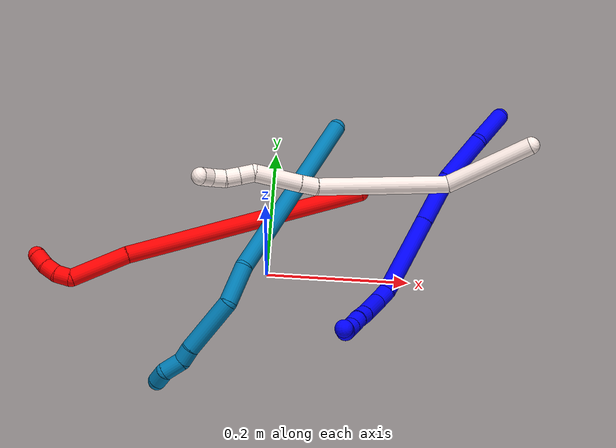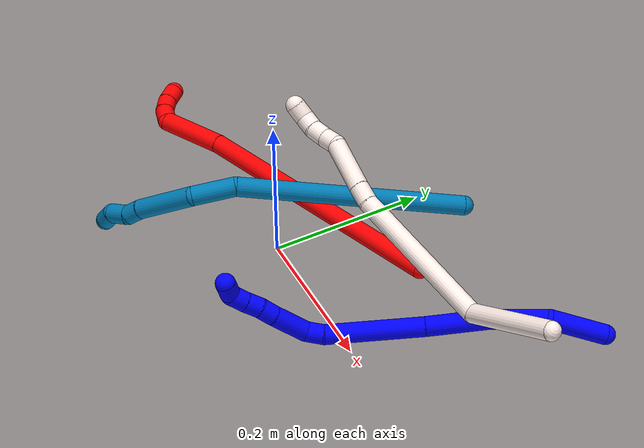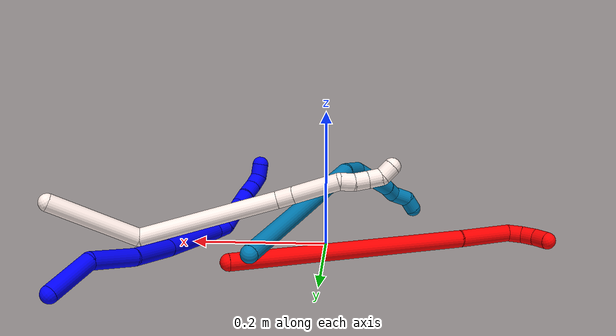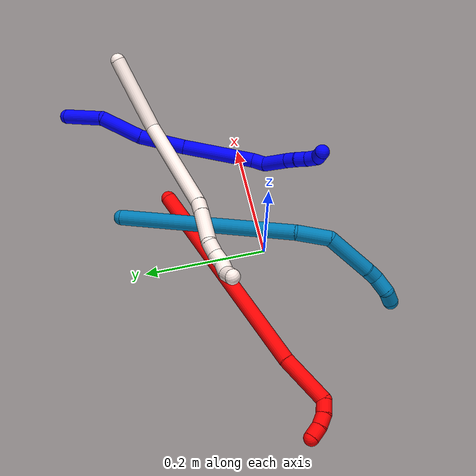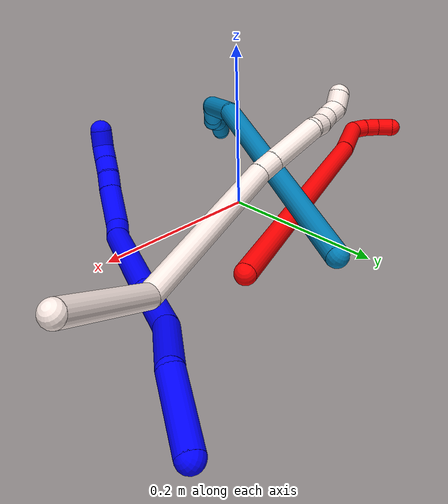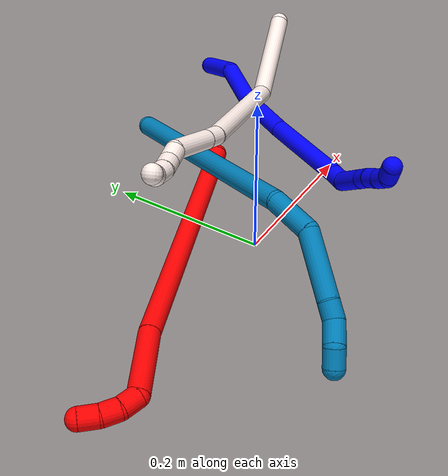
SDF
<sdf version="1.7">
 <world name="default">
  <model name="1">
   <static>0</static>
   <link name="1">
    <collision name="collision-cylinder-e_1_1_4">
     <pose>-0.008242 -0.035737 0.003738 1.46659 -0.225467 -0.203279</pose>
     <geometry><cylinder><radius>0.0125</radius><length>0.07373</length></cylinder></geometry>
     <surface>
      <friction><ode><mu>1.16</mu><mu2>1.16</mu2><slip1>0</slip1><slip2>0</slip2></ode></friction>
      <contact><ode><kp>1e+06</kp><kd>1</kd><max_vel>0</max_vel><min_depth>0.001</min_depth></ode></contact>
     </surface>
    </collision>
    <visual name="visual-cylinder-e_1_1_4">
     <pose>-0.008242 -0.035737 0.003738 1.46659 -0.225467 -0.203279</pose>
     <geometry><cylinder><radius>0.0125</radius><length>0.07373</length></cylinder></geometry>
     <material><ambient>0 0 1 1</ambient></material>
    </visual>
    <collision name="collision-cylinder-e_2_4_5">
     <pose>-0.01504 -0.106172 -0.005378 1.92556 0.038984 0.056006</pose>
     <geometry><cylinder><radius>0.0125</radius><length>0.07406</length></cylinder></geometry>
     <surface>
      <friction><ode><mu>1.16</mu><mu2>1.16</mu2><slip1>0</slip1><slip2>0</slip2></ode></friction>
      <contact><ode><kp>1e+06</kp><kd>1</kd><max_vel>0</max_vel><min_depth>0.001</min_depth></ode></contact>
     </surface>
    </collision>
    <visual name="visual-cylinder-e_2_4_5">
     <pose>-0.01504 -0.106172 -0.005378 1.92556 0.038984 0.056006</pose>
     <geometry><cylinder><radius>0.0125</radius><length>0.07406</length></cylinder></geometry>
     <material><ambient>0 0 1 1</ambient></material>
    </visual>
    <collision name="collision-cylinder-e_3_5_6">
     <pose>-0.007867 -0.178789 -0.02404 1.72278 0.148274 0.1726</pose>
     <geometry><cylinder><radius>0.0125</radius><length>0.077574</length></cylinder></geometry>
     <surface>
      <friction><ode><mu>1.16</mu><mu2>1.16</mu2><slip1>0</slip1><slip2>0</slip2></ode></friction>
      <contact><ode><kp>1e+06</kp><kd>1</kd><max_vel>0</max_vel><min_depth>0.001</min_depth></ode></contact>
     </surface>
    </collision>
    <visual name="visual-cylinder-e_3_5_6">
     <pose>-0.007867 -0.178789 -0.02404 1.72278 0.148274 0.1726</pose>
     <geometry><cylinder><radius>0.0125</radius><length>0.077574</length></cylinder></geometry>
     <material><ambient>0 0 1 1</ambient></material>
    </visual>
    <collision name="collision-cylinder-e_4_6_7">
     <pose>0.004844 -0.277413 -0.036292 1.67656 0.113862 0.126557</pose>
     <geometry><cylinder><radius>0.0125</radius><length>0.122888</length></cylinder></geometry>
     <surface>
      <friction><ode><mu>1.16</mu><mu2>1.16</mu2><slip1>0</slip1><slip2>0</slip2></ode></friction>
      <contact><ode><kp>1e+06</kp><kd>1</kd><max_vel>0</max_vel><min_depth>0.001</min_depth></ode></contact>
     </surface>
    </collision>
    <visual name="visual-cylinder-e_4_6_7">
     <pose>0.004844 -0.277413 -0.036292 1.67656 0.113862 0.126557</pose>
     <geometry><cylinder><radius>0.0125</radius><length>0.122888</length></cylinder></geometry>
     <material><ambient>0 0 1 1</ambient></material>
    </visual>
    <collision name="collision-cylinder-e_5_7_8">
     <pose>0.010243 -0.349324 -0.04442 1.72001 -0.138722 -0.161045</pose>
     <geometry><cylinder><radius>0.0125</radius><length>0.022884</length></cylinder></geometry>
     <surface>
      <friction><ode><mu>1.16</mu><mu2>1.16</mu2><slip1>0</slip1><slip2>0</slip2></ode></friction>
      <contact><ode><kp>1e+06</kp><kd>1</kd><max_vel>0</max_vel><min_depth>0.001</min_depth></ode></contact>
     </surface>
    </collision>
    <visual name="visual-cylinder-e_5_7_8">
     <pose>0.010243 -0.349324 -0.04442 1.72001 -0.138722 -0.161045</pose>
     <geometry><cylinder><radius>0.0125</radius><length>0.022884</length></cylinder></geometry>
     <material><ambient>0 0 1 1</ambient></material>
    </visual>
    <collision name="collision-cylinder-e_6_8_9">
     <pose>-0.000427 -0.381079 -0.038515 1.21696 -0.393267 -0.275799</pose>
     <geometry><cylinder><radius>0.0125</radius><length>0.047432</length></cylinder></geometry>
     <surface>
      <friction><ode><mu>1.16</mu><mu2>1.16</mu2><slip1>0</slip1><slip2>0</slip2></ode></friction>
      <contact><ode><kp>1e+06</kp><kd>1</kd><max_vel>0</max_vel><min_depth>0.001</min_depth></ode></contact>
     </surface>
    </collision>
    <visual name="visual-cylinder-e_6_8_9">
     <pose>-0.000427 -0.381079 -0.038515 1.21696 -0.393267 -0.275799</pose>
     <geometry><cylinder><radius>0.0125</radius><length>0.047432</length></cylinder></geometry>
     <material><ambient>0 0 1 1</ambient></material>
    </visual>
    <collision name="collision-cylinder-e_7_9_10">
     <pose>-0.013971 -0.410224 -0.028038 1.24678 -0.456718 -0.331167</pose>
     <geometry><cylinder><radius>0.0125</radius><length>0.020208</length></cylinder></geometry>
     <surface>
      <friction><ode><mu>1.16</mu><mu2>1.16</mu2><slip1>0</slip1><slip2>0</slip2></ode></friction>
      <contact><ode><kp>1e+06</kp><kd>1</kd><max_vel>0</max_vel><min_depth>0.001</min_depth></ode></contact>
     </surface>
    </collision>
    <visual name="visual-cylinder-e_7_9_10">
     <pose>-0.013971 -0.410224 -0.028038 1.24678 -0.456718 -0.331167</pose>
     <geometry><cylinder><radius>0.0125</radius><length>0.020208</length></cylinder></geometry>
     <material><ambient>0 0 1 1</ambient></material>
    </visual>
    <collision name="collision-cylinder-e_8_10_11">
     <pose>-0.021723 -0.428174 -0.02287 1.33164 -0.329809 -0.259956</pose>
     <geometry><cylinder><radius>0.0125</radius><length>0.020351</length></cylinder></geometry>
     <surface>
      <friction><ode><mu>1.16</mu><mu2>1.16</mu2><slip1>0</slip1><slip2>0</slip2></ode></friction>
      <contact><ode><kp>1e+06</kp><kd>1</kd><max_vel>0</max_vel><min_depth>0.001</min_depth></ode></contact>
     </surface>
    </collision>
    <visual name="visual-cylinder-e_8_10_11">
     <pose>-0.021723 -0.428174 -0.02287 1.33164 -0.329809 -0.259956</pose>
     <geometry><cylinder><radius>0.0125</radius><length>0.020351</length></cylinder></geometry>
     <material><ambient>0 0 1 1</ambient></material>
    </visual>
    <collision name="collision-cylinder-e_9_11_12">
     <pose>-0.02895 -0.446426 -0.017424 1.22907 -0.394469 -0.280194</pose>
     <geometry><cylinder><radius>0.0125</radius><length>0.020461</length></cylinder></geometry>
     <surface>
      <friction><ode><mu>1.16</mu><mu2>1.16</mu2><slip1>0</slip1><slip2>0</slip2></ode></friction>
      <contact><ode><kp>1e+06</kp><kd>1</kd><max_vel>0</max_vel><min_depth>0.001</min_depth></ode></contact>
     </surface>
    </collision>
    <visual name="visual-cylinder-e_9_11_12">
     <pose>-0.02895 -0.446426 -0.017424 1.22907 -0.394469 -0.280194</pose>
     <geometry><cylinder><radius>0.0125</radius><length>0.020461</length></cylinder></geometry>
     <material><ambient>0 0 1 1</ambient></material>
    </visual>
    <collision name="collision-cylinder-e_10_12_2">
     <pose>-0.039646 -0.459258 -0.007707 0.540751 -0.72453 -0.209316</pose>
     <geometry><cylinder><radius>0.0125</radius><length>0.020411</length></cylinder></geometry>
     <surface>
      <friction><ode><mu>1.16</mu><mu2>1.16</mu2><slip1>0</slip1><slip2>0</slip2></ode></friction>
      <contact><ode><kp>1e+06</kp><kd>1</kd><max_vel>0</max_vel><min_depth>0.001</min_depth></ode></contact>
     </surface>
    </collision>
    <visual name="visual-cylinder-e_10_12_2">
     <pose>-0.039646 -0.459258 -0.007707 0.540751 -0.72453 -0.209316</pose>
     <geometry><cylinder><radius>0.0125</radius><length>0.020411</length></cylinder></geometry>
     <material><ambient>0 0 1 1</ambient></material>
    </visual>
    <collision name="collision-sphere-2">
     <pose>-0.04641 -0.463192 -0.001156 0 -0 0</pose>
     <geometry><sphere><radius>0.0125</radius></sphere></geometry>
     <surface>
      <friction><ode><mu>1.16</mu><mu2>1.16</mu2><slip1>0</slip1><slip2>0</slip2></ode></friction>
      <contact><ode><kp>1e+06</kp><kd>1</kd><max_vel>0</max_vel><min_depth>0.001</min_depth></ode></contact>
     </surface>
    </collision>
    <visual name="visual-sphere-2">
     <pose>-0.04641 -0.463192 -0.001156 0 -0 0</pose>
     <geometry><sphere><radius>0.0125</radius></sphere></geometry>
     <material><ambient>0 0 1 1</ambient></material>
    </visual>
    <collision name="collision-sphere-12">
     <pose>-0.032882 -0.455324 -0.014259 0 -0 0</pose>
     <geometry><sphere><radius>0.0125</radius></sphere></geometry>
     <surface>
      <friction><ode><mu>1.16</mu><mu2>1.16</mu2><slip1>0</slip1><slip2>0</slip2></ode></friction>
      <contact><ode><kp>1e+06</kp><kd>1</kd><max_vel>0</max_vel><min_depth>0.001</min_depth></ode></contact>
     </surface>
    </collision>
    <visual name="visual-sphere-12">
     <pose>-0.032882 -0.455324 -0.014259 0 -0 0</pose>
     <geometry><sphere><radius>0.0125</radius></sphere></geometry>
     <material><ambient>0 0 1 1</ambient></material>
    </visual>
    <collision name="collision-sphere-11">
     <pose>-0.025018 -0.437527 -0.020589 0 -0 0</pose>
     <geometry><sphere><radius>0.0125</radius></sphere></geometry>
     <surface>
      <friction><ode><mu>1.16</mu><mu2>1.16</mu2><slip1>0</slip1><slip2>0</slip2></ode></friction>
      <contact><ode><kp>1e+06</kp><kd>1</kd><max_vel>0</max_vel><min_depth>0.001</min_depth></ode></contact>
     </surface>
    </collision>
    <visual name="visual-sphere-11">
     <pose>-0.025018 -0.437527 -0.020589 0 -0 0</pose>
     <geometry><sphere><radius>0.0125</radius></sphere></geometry>
     <material><ambient>0 0 1 1</ambient></material>
    </visual>
    <collision name="collision-sphere-10">
     <pose>-0.018427 -0.41882 -0.02515 0 -0 0</pose>
     <geometry><sphere><radius>0.0125</radius></sphere></geometry>
     <surface>
      <friction><ode><mu>1.16</mu><mu2>1.16</mu2><slip1>0</slip1><slip2>0</slip2></ode></friction>
      <contact><ode><kp>1e+06</kp><kd>1</kd><max_vel>0</max_vel><min_depth>0.001</min_depth></ode></contact>
     </surface>
    </collision>
    <visual name="visual-sphere-10">
     <pose>-0.018427 -0.41882 -0.02515 0 -0 0</pose>
     <geometry><sphere><radius>0.0125</radius></sphere></geometry>
     <material><ambient>0 0 1 1</ambient></material>
    </visual>
    <collision name="collision-sphere-9">
     <pose>-0.009515 -0.401628 -0.030925 0 -0 0</pose>
     <geometry><sphere><radius>0.0125</radius></sphere></geometry>
     <surface>
      <friction><ode><mu>1.16</mu><mu2>1.16</mu2><slip1>0</slip1><slip2>0</slip2></ode></friction>
      <contact><ode><kp>1e+06</kp><kd>1</kd><max_vel>0</max_vel><min_depth>0.001</min_depth></ode></contact>
     </surface>
    </collision>
    <visual name="visual-sphere-9">
     <pose>-0.009515 -0.401628 -0.030925 0 -0 0</pose>
     <geometry><sphere><radius>0.0125</radius></sphere></geometry>
     <material><ambient>0 0 1 1</ambient></material>
    </visual>
    <collision name="collision-sphere-4">
     <pose>-0.016483 -0.071474 0.007475 0 -0 0</pose>
     <geometry><sphere><radius>0.0125</radius></sphere></geometry>
     <surface>
      <friction><ode><mu>1.16</mu><mu2>1.16</mu2><slip1>0</slip1><slip2>0</slip2></ode></friction>
      <contact><ode><kp>1e+06</kp><kd>1</kd><max_vel>0</max_vel><min_depth>0.001</min_depth></ode></contact>
     </surface>
    </collision>
    <visual name="visual-sphere-4">
     <pose>-0.016483 -0.071474 0.007475 0 -0 0</pose>
     <geometry><sphere><radius>0.0125</radius></sphere></geometry>
     <material><ambient>0 0 1 1</ambient></material>
    </visual>
    <collision name="collision-sphere-1">
     <geometry><sphere><radius>0.0125</radius></sphere></geometry>
     <surface>
      <friction><ode><mu>1.16</mu><mu2>1.16</mu2><slip1>0</slip1><slip2>0</slip2></ode></friction>
      <contact><ode><kp>1e+06</kp><kd>1</kd><max_vel>0</max_vel><min_depth>0.001</min_depth></ode></contact>
     </surface>
    </collision>
    <visual name="visual-sphere-1">
     <geometry><sphere><radius>0.0125</radius></sphere></geometry>
     <material><ambient>0 0 1 1</ambient></material>
    </visual>
    <collision name="collision-sphere-8">
     <pose>0.008661 -0.36053 -0.046105 0 -0 0</pose>
     <geometry><sphere><radius>0.0125</radius></sphere></geometry>
     <surface>
      <friction><ode><mu>1.16</mu><mu2>1.16</mu2><slip1>0</slip1><slip2>0</slip2></ode></friction>
      <contact><ode><kp>1e+06</kp><kd>1</kd><max_vel>0</max_vel><min_depth>0.001</min_depth></ode></contact>
     </surface>
    </collision>
    <visual name="visual-sphere-8">
     <pose>0.008661 -0.36053 -0.046105 0 -0 0</pose>
     <geometry><sphere><radius>0.0125</radius></sphere></geometry>
     <material><ambient>0 0 1 1</ambient></material>
    </visual>
    <collision name="collision-sphere-5">
     <pose>-0.013597 -0.14087 -0.018232 0 -0 0</pose>
     <geometry><sphere><radius>0.0125</radius></sphere></geometry>
     <surface>
      <friction><ode><mu>1.16</mu><mu2>1.16</mu2><slip1>0</slip1><slip2>0</slip2></ode></friction>
      <contact><ode><kp>1e+06</kp><kd>1</kd><max_vel>0</max_vel><min_depth>0.001</min_depth></ode></contact>
     </surface>
    </collision>
    <visual name="visual-sphere-5">
     <pose>-0.013597 -0.14087 -0.018232 0 -0 0</pose>
     <geometry><sphere><radius>0.0125</radius></sphere></geometry>
     <material><ambient>0 0 1 1</ambient></material>
    </visual>
    <collision name="collision-sphere-6">
     <pose>-0.002137 -0.216708 -0.029847 0 -0 0</pose>
     <geometry><sphere><radius>0.0125</radius></sphere></geometry>
     <surface>
      <friction><ode><mu>1.16</mu><mu2>1.16</mu2><slip1>0</slip1><slip2>0</slip2></ode></friction>
      <contact><ode><kp>1e+06</kp><kd>1</kd><max_vel>0</max_vel><min_depth>0.001</min_depth></ode></contact>
     </surface>
    </collision>
    <visual name="visual-sphere-6">
     <pose>-0.002137 -0.216708 -0.029847 0 -0 0</pose>
     <geometry><sphere><radius>0.0125</radius></sphere></geometry>
     <material><ambient>0 0 1 1</ambient></material>
    </visual>
    <collision name="collision-sphere-7">
     <pose>0.011825 -0.338118 -0.042736 0 -0 0</pose>
     <geometry><sphere><radius>0.0125</radius></sphere></geometry>
     <surface>
      <friction><ode><mu>1.16</mu><mu2>1.16</mu2><slip1>0</slip1><slip2>0</slip2></ode></friction>
      <contact><ode><kp>1e+06</kp><kd>1</kd><max_vel>0</max_vel><min_depth>0.001</min_depth></ode></contact>
     </surface>
    </collision>
    <visual name="visual-sphere-7">
     <pose>0.011825 -0.338118 -0.042736 0 -0 0</pose>
     <geometry><sphere><radius>0.0125</radius></sphere></geometry>
     <material><ambient>0 0 1 1</ambient></material>
    </visual>
    <inertial>
     <pose>-0.007297 -0.240079 -0.021673 0 -0 0</pose>
     <mass>0.5</mass>
     <inertia><ixx>0.0003</ixx><ixy>0</ixy><ixz>0</ixz><iyy>-3.8e-05</iyy><iyz>0</iyz><izz>0.000273</izz></inertia>
    </inertial>
   </link>
   <pose>0.329177 0.281481 0.011495 -0.159529 0.772453 -0.532673</pose>
  </model>
  <model name="2">
   <static>0</static>
   <link name="2">
    <collision name="collision-cylinder-e_1_1_4">
     <pose>-0.142229 -0.062531 0.079883 0.664155 -0.951224 -0.351559</pose>
     <geometry><cylinder><radius>0.0125</radius><length>0.349402</length></cylinder></geometry>
     <surface>
      <friction><ode><mu>1.16</mu><mu2>1.16</mu2><slip1>0</slip1><slip2>0</slip2></ode></friction>
      <contact><ode><kp>1e+06</kp><kd>1</kd><max_vel>0</max_vel><min_depth>0.001</min_depth></ode></contact>
     </surface>
    </collision>
    <visual name="visual-cylinder-e_1_1_4">
     <pose>-0.142229 -0.062531 0.079883 0.664155 -0.951224 -0.351559</pose>
     <geometry><cylinder><radius>0.0125</radius><length>0.349402</length></cylinder></geometry>
     <material><ambient>1 0 0 1</ambient></material>
    </visual>
    <collision name="collision-cylinder-e_2_4_5">
     <pose>-0.320428 -0.134762 0.180666 0.434504 -1.00108 -0.240324</pose>
     <geometry><cylinder><radius>0.0125</radius><length>0.085435</length></cylinder></geometry>
     <surface>
      <friction><ode><mu>1.16</mu><mu2>1.16</mu2><slip1>0</slip1><slip2>0</slip2></ode></friction>
      <contact><ode><kp>1e+06</kp><kd>1</kd><max_vel>0</max_vel><min_depth>0.001</min_depth></ode></contact>
     </surface>
    </collision>
    <visual name="visual-cylinder-e_2_4_5">
     <pose>-0.320428 -0.134762 0.180666 0.434504 -1.00108 -0.240324</pose>
     <geometry><cylinder><radius>0.0125</radius><length>0.085435</length></cylinder></geometry>
     <material><ambient>1 0 0 1</ambient></material>
    </visual>
    <collision name="collision-cylinder-e_3_5_6">
     <pose>-0.361184 -0.153734 0.205422 1.17678 -0.444729 -0.299467</pose>
     <geometry><cylinder><radius>0.0125</radius><length>0.02225</length></cylinder></geometry>
     <surface>
      <friction><ode><mu>1.16</mu><mu2>1.16</mu2><slip1>0</slip1><slip2>0</slip2></ode></friction>
      <contact><ode><kp>1e+06</kp><kd>1</kd><max_vel>0</max_vel><min_depth>0.001</min_depth></ode></contact>
     </surface>
    </collision>
    <visual name="visual-cylinder-e_3_5_6">
     <pose>-0.361184 -0.153734 0.205422 1.17678 -0.444729 -0.299467</pose>
     <geometry><cylinder><radius>0.0125</radius><length>0.02225</length></cylinder></geometry>
     <material><ambient>1 0 0 1</ambient></material>
    </visual>
    <collision name="collision-cylinder-e_4_6_7">
     <pose>-0.367724 -0.173132 0.211316 1.37211 -0.168213 -0.137828</pose>
     <geometry><cylinder><radius>0.0125</radius><length>0.020951</length></cylinder></geometry>
     <surface>
      <friction><ode><mu>1.16</mu><mu2>1.16</mu2><slip1>0</slip1><slip2>0</slip2></ode></friction>
      <contact><ode><kp>1e+06</kp><kd>1</kd><max_vel>0</max_vel><min_depth>0.001</min_depth></ode></contact>
     </surface>
    </collision>
    <visual name="visual-cylinder-e_4_6_7">
     <pose>-0.367724 -0.173132 0.211316 1.37211 -0.168213 -0.137828</pose>
     <geometry><cylinder><radius>0.0125</radius><length>0.020951</length></cylinder></geometry>
     <material><ambient>1 0 0 1</ambient></material>
    </visual>
    <collision name="collision-cylinder-e_5_7_2">
     <pose>-0.368987 -0.194196 0.214179 1.4955 0.044721 0.041476</pose>
     <geometry><cylinder><radius>0.0125</radius><length>0.021962</length></cylinder></geometry>
     <surface>
      <friction><ode><mu>1.16</mu><mu2>1.16</mu2><slip1>0</slip1><slip2>0</slip2></ode></friction>
      <contact><ode><kp>1e+06</kp><kd>1</kd><max_vel>0</max_vel><min_depth>0.001</min_depth></ode></contact>
     </surface>
    </collision>
    <visual name="visual-cylinder-e_5_7_2">
     <pose>-0.368987 -0.194196 0.214179 1.4955 0.044721 0.041476</pose>
     <geometry><cylinder><radius>0.0125</radius><length>0.021962</length></cylinder></geometry>
     <material><ambient>1 0 0 1</ambient></material>
    </visual>
    <collision name="collision-sphere-2">
     <pose>-0.368496 -0.205135 0.215005 0 -0 0</pose>
     <geometry><sphere><radius>0.0125</radius></sphere></geometry>
     <surface>
      <friction><ode><mu>1.16</mu><mu2>1.16</mu2><slip1>0</slip1><slip2>0</slip2></ode></friction>
      <contact><ode><kp>1e+06</kp><kd>1</kd><max_vel>0</max_vel><min_depth>0.001</min_depth></ode></contact>
     </surface>
    </collision>
    <visual name="visual-sphere-2">
     <pose>-0.368496 -0.205135 0.215005 0 -0 0</pose>
     <geometry><sphere><radius>0.0125</radius></sphere></geometry>
     <material><ambient>1 0 0 1</ambient></material>
    </visual>
    <collision name="collision-sphere-7">
     <pose>-0.369478 -0.183257 0.213354 0 -0 0</pose>
     <geometry><sphere><radius>0.0125</radius></sphere></geometry>
     <surface>
      <friction><ode><mu>1.16</mu><mu2>1.16</mu2><slip1>0</slip1><slip2>0</slip2></ode></friction>
      <contact><ode><kp>1e+06</kp><kd>1</kd><max_vel>0</max_vel><min_depth>0.001</min_depth></ode></contact>
     </surface>
    </collision>
    <visual name="visual-sphere-7">
     <pose>-0.369478 -0.183257 0.213354 0 -0 0</pose>
     <geometry><sphere><radius>0.0125</radius></sphere></geometry>
     <material><ambient>1 0 0 1</ambient></material>
    </visual>
    <collision name="collision-sphere-6">
     <pose>-0.365971 -0.163008 0.209277 0 -0 0</pose>
     <geometry><sphere><radius>0.0125</radius></sphere></geometry>
     <surface>
      <friction><ode><mu>1.16</mu><mu2>1.16</mu2><slip1>0</slip1><slip2>0</slip2></ode></friction>
      <contact><ode><kp>1e+06</kp><kd>1</kd><max_vel>0</max_vel><min_depth>0.001</min_depth></ode></contact>
     </surface>
    </collision>
    <visual name="visual-sphere-6">
     <pose>-0.365971 -0.163008 0.209277 0 -0 0</pose>
     <geometry><sphere><radius>0.0125</radius></sphere></geometry>
     <material><ambient>1 0 0 1</ambient></material>
    </visual>
    <collision name="collision-sphere-5">
     <pose>-0.356398 -0.144461 0.201567 0 -0 0</pose>
     <geometry><sphere><radius>0.0125</radius></sphere></geometry>
     <surface>
      <friction><ode><mu>1.16</mu><mu2>1.16</mu2><slip1>0</slip1><slip2>0</slip2></ode></friction>
      <contact><ode><kp>1e+06</kp><kd>1</kd><max_vel>0</max_vel><min_depth>0.001</min_depth></ode></contact>
     </surface>
    </collision>
    <visual name="visual-sphere-5">
     <pose>-0.356398 -0.144461 0.201567 0 -0 0</pose>
     <geometry><sphere><radius>0.0125</radius></sphere></geometry>
     <material><ambient>1 0 0 1</ambient></material>
    </visual>
    <collision name="collision-sphere-1">
     <geometry><sphere><radius>0.0125</radius></sphere></geometry>
     <surface>
      <friction><ode><mu>1.16</mu><mu2>1.16</mu2><slip1>0</slip1><slip2>0</slip2></ode></friction>
      <contact><ode><kp>1e+06</kp><kd>1</kd><max_vel>0</max_vel><min_depth>0.001</min_depth></ode></contact>
     </surface>
    </collision>
    <visual name="visual-sphere-1">
     <geometry><sphere><radius>0.0125</radius></sphere></geometry>
     <material><ambient>1 0 0 1</ambient></material>
    </visual>
    <collision name="collision-sphere-4">
     <pose>-0.284457 -0.125062 0.159766 0 -0 0</pose>
     <geometry><sphere><radius>0.0125</radius></sphere></geometry>
     <surface>
      <friction><ode><mu>1.16</mu><mu2>1.16</mu2><slip1>0</slip1><slip2>0</slip2></ode></friction>
      <contact><ode><kp>1e+06</kp><kd>1</kd><max_vel>0</max_vel><min_depth>0.001</min_depth></ode></contact>
     </surface>
    </collision>
    <visual name="visual-sphere-4">
     <pose>-0.284457 -0.125062 0.159766 0 -0 0</pose>
     <geometry><sphere><radius>0.0125</radius></sphere></geometry>
     <material><ambient>1 0 0 1</ambient></material>
    </visual>
    <inertial>
     <pose>-0.20183 -0.089349 0.114096 0 -0 0</pose>
     <mass>0.5</mass>
     <inertia>
      <ixx>0.001229</ixx>
      <ixy>0</ixy>
      <ixz>0</ixz>
      <iyy>0.002572</iyy>
      <iyz>0</iyz>
      <izz>0.004264</izz>
     </inertia>
    </inertial>
   </link>
   <pose>0.126584 0.136921 0.011489 -3.05653 0.492781 0.773168</pose>
  </model>
  <model name="9">
   <static>0</static>
   <link name="9">
    <collision name="collision-cylinder-e_1_1_4">
     <pose>-0.000163 -0.137834 -0.047326 1.90154 -0.001117 -0.001565</pose>
     <geometry><cylinder><radius>0.0125</radius><length>0.291465</length></cylinder></geometry>
     <surface>
      <friction><ode><mu>1.16</mu><mu2>1.16</mu2><slip1>0</slip1><slip2>0</slip2></ode></friction>
      <contact><ode><kp>1e+06</kp><kd>1</kd><max_vel>0</max_vel><min_depth>0.001</min_depth></ode></contact>
     </surface>
    </collision>
    <visual name="visual-cylinder-e_1_1_4">
     <pose>-0.000163 -0.137834 -0.047326 1.90154 -0.001117 -0.001565</pose>
     <geometry><cylinder><radius>0.0125</radius><length>0.291465</length></cylinder></geometry>
     <material><ambient>0 0.490196 0.709804 1</ambient></material>
    </visual>
    <collision name="collision-cylinder-e_2_4_5">
     <pose>-0.00134 -0.297269 -0.11192 2.24517 -0.036679 -0.07625</pose>
     <geometry><cylinder><radius>0.0125</radius><length>0.055346</length></cylinder></geometry>
     <surface>
      <friction><ode><mu>1.16</mu><mu2>1.16</mu2><slip1>0</slip1><slip2>0</slip2></ode></friction>
      <contact><ode><kp>1e+06</kp><kd>1</kd><max_vel>0</max_vel><min_depth>0.001</min_depth></ode></contact>
     </surface>
    </collision>
    <visual name="visual-cylinder-e_2_4_5">
     <pose>-0.00134 -0.297269 -0.11192 2.24517 -0.036679 -0.07625</pose>
     <geometry><cylinder><radius>0.0125</radius><length>0.055346</length></cylinder></geometry>
     <material><ambient>0 0.490196 0.709804 1</ambient></material>
    </visual>
    <collision name="collision-cylinder-e_3_5_6">
     <pose>-0.021939 -0.33979 -0.157825 2.51068 -0.504524 -1.33697</pose>
     <geometry><cylinder><radius>0.0125</radius><length>0.081026</length></cylinder></geometry>
     <surface>
      <friction><ode><mu>1.16</mu><mu2>1.16</mu2><slip1>0</slip1><slip2>0</slip2></ode></friction>
      <contact><ode><kp>1e+06</kp><kd>1</kd><max_vel>0</max_vel><min_depth>0.001</min_depth></ode></contact>
     </surface>
    </collision>
    <visual name="visual-cylinder-e_3_5_6">
     <pose>-0.021939 -0.33979 -0.157825 2.51068 -0.504524 -1.33697</pose>
     <geometry><cylinder><radius>0.0125</radius><length>0.081026</length></cylinder></geometry>
     <material><ambient>0 0.490196 0.709804 1</ambient></material>
    </visual>
    <collision name="collision-cylinder-e_4_6_7">
     <pose>-0.046288 -0.364841 -0.19509 2.6951 -0.462247 -1.60668</pose>
     <geometry><cylinder><radius>0.0125</radius><length>0.021374</length></cylinder></geometry>
     <surface>
      <friction><ode><mu>1.16</mu><mu2>1.16</mu2><slip1>0</slip1><slip2>0</slip2></ode></friction>
      <contact><ode><kp>1e+06</kp><kd>1</kd><max_vel>0</max_vel><min_depth>0.001</min_depth></ode></contact>
     </surface>
    </collision>
    <visual name="visual-cylinder-e_4_6_7">
     <pose>-0.046288 -0.364841 -0.19509 2.6951 -0.462247 -1.60668</pose>
     <geometry><cylinder><radius>0.0125</radius><length>0.021374</length></cylinder></geometry>
     <material><ambient>0 0.490196 0.709804 1</ambient></material>
    </visual>
    <collision name="collision-cylinder-e_5_7_8">
     <pose>-0.061121 -0.376392 -0.210674 2.32387 -0.780244 -1.51851</pose>
     <geometry><cylinder><radius>0.0125</radius><length>0.028623</length></cylinder></geometry>
     <surface>
      <friction><ode><mu>1.16</mu><mu2>1.16</mu2><slip1>0</slip1><slip2>0</slip2></ode></friction>
      <contact><ode><kp>1e+06</kp><kd>1</kd><max_vel>0</max_vel><min_depth>0.001</min_depth></ode></contact>
     </surface>
    </collision>
    <visual name="visual-cylinder-e_5_7_8">
     <pose>-0.061121 -0.376392 -0.210674 2.32387 -0.780244 -1.51851</pose>
     <geometry><cylinder><radius>0.0125</radius><length>0.028623</length></cylinder></geometry>
     <material><ambient>0 0.490196 0.709804 1</ambient></material>
    </visual>
    <collision name="collision-cylinder-e_6_8_2">
     <pose>-0.077983 -0.384374 -0.226369 3.07752 -0.659899 -2.95497</pose>
     <geometry><cylinder><radius>0.0125</radius><length>0.022167</length></cylinder></geometry>
     <surface>
      <friction><ode><mu>1.16</mu><mu2>1.16</mu2><slip1>0</slip1><slip2>0</slip2></ode></friction>
      <contact><ode><kp>1e+06</kp><kd>1</kd><max_vel>0</max_vel><min_depth>0.001</min_depth></ode></contact>
     </surface>
    </collision>
    <visual name="visual-cylinder-e_6_8_2">
     <pose>-0.077983 -0.384374 -0.226369 3.07752 -0.659899 -2.95497</pose>
     <geometry><cylinder><radius>0.0125</radius><length>0.022167</length></cylinder></geometry>
     <material><ambient>0 0.490196 0.709804 1</ambient></material>
    </visual>
    <collision name="collision-sphere-2">
     <pose>-0.084778 -0.384935 -0.235107 0 -0 0</pose>
     <geometry><sphere><radius>0.0125</radius></sphere></geometry>
     <surface>
      <friction><ode><mu>1.16</mu><mu2>1.16</mu2><slip1>0</slip1><slip2>0</slip2></ode></friction>
      <contact><ode><kp>1e+06</kp><kd>1</kd><max_vel>0</max_vel><min_depth>0.001</min_depth></ode></contact>
     </surface>
    </collision>
    <visual name="visual-sphere-2">
     <pose>-0.084778 -0.384935 -0.235107 0 -0 0</pose>
     <geometry><sphere><radius>0.0125</radius></sphere></geometry>
     <material><ambient>0 0.490196 0.709804 1</ambient></material>
    </visual>
    <collision name="collision-sphere-4">
     <pose>-0.000326 -0.275668 -0.094652 0 -0 0</pose>
     <geometry><sphere><radius>0.0125</radius></sphere></geometry>
     <surface>
      <friction><ode><mu>1.16</mu><mu2>1.16</mu2><slip1>0</slip1><slip2>0</slip2></ode></friction>
      <contact><ode><kp>1e+06</kp><kd>1</kd><max_vel>0</max_vel><min_depth>0.001</min_depth></ode></contact>
     </surface>
    </collision>
    <visual name="visual-sphere-4">
     <pose>-0.000326 -0.275668 -0.094652 0 -0 0</pose>
     <geometry><sphere><radius>0.0125</radius></sphere></geometry>
     <material><ambient>0 0.490196 0.709804 1</ambient></material>
    </visual>
    <collision name="collision-sphere-1">
     <geometry><sphere><radius>0.0125</radius></sphere></geometry>
     <surface>
      <friction><ode><mu>1.16</mu><mu2>1.16</mu2><slip1>0</slip1><slip2>0</slip2></ode></friction>
      <contact><ode><kp>1e+06</kp><kd>1</kd><max_vel>0</max_vel><min_depth>0.001</min_depth></ode></contact>
     </surface>
    </collision>
    <visual name="visual-sphere-1">
     <geometry><sphere><radius>0.0125</radius></sphere></geometry>
     <material><ambient>0 0.490196 0.709804 1</ambient></material>
    </visual>
    <collision name="collision-sphere-8">
     <pose>-0.071189 -0.383813 -0.21763 0 -0 0</pose>
     <geometry><sphere><radius>0.0125</radius></sphere></geometry>
     <surface>
      <friction><ode><mu>1.16</mu><mu2>1.16</mu2><slip1>0</slip1><slip2>0</slip2></ode></friction>
      <contact><ode><kp>1e+06</kp><kd>1</kd><max_vel>0</max_vel><min_depth>0.001</min_depth></ode></contact>
     </surface>
    </collision>
    <visual name="visual-sphere-8">
     <pose>-0.071189 -0.383813 -0.21763 0 -0 0</pose>
     <geometry><sphere><radius>0.0125</radius></sphere></geometry>
     <material><ambient>0 0.490196 0.709804 1</ambient></material>
    </visual>
    <collision name="collision-sphere-5">
     <pose>-0.002355 -0.31887 -0.129187 0 -0 0</pose>
     <geometry><sphere><radius>0.0125</radius></sphere></geometry>
     <surface>
      <friction><ode><mu>1.16</mu><mu2>1.16</mu2><slip1>0</slip1><slip2>0</slip2></ode></friction>
      <contact><ode><kp>1e+06</kp><kd>1</kd><max_vel>0</max_vel><min_depth>0.001</min_depth></ode></contact>
     </surface>
    </collision>
    <visual name="visual-sphere-5">
     <pose>-0.002355 -0.31887 -0.129187 0 -0 0</pose>
     <geometry><sphere><radius>0.0125</radius></sphere></geometry>
     <material><ambient>0 0.490196 0.709804 1</ambient></material>
    </visual>
    <collision name="collision-sphere-6">
     <pose>-0.041522 -0.36071 -0.186463 0 -0 0</pose>
     <geometry><sphere><radius>0.0125</radius></sphere></geometry>
     <surface>
      <friction><ode><mu>1.16</mu><mu2>1.16</mu2><slip1>0</slip1><slip2>0</slip2></ode></friction>
      <contact><ode><kp>1e+06</kp><kd>1</kd><max_vel>0</max_vel><min_depth>0.001</min_depth></ode></contact>
     </surface>
    </collision>
    <visual name="visual-sphere-6">
     <pose>-0.041522 -0.36071 -0.186463 0 -0 0</pose>
     <geometry><sphere><radius>0.0125</radius></sphere></geometry>
     <material><ambient>0 0.490196 0.709804 1</ambient></material>
    </visual>
    <collision name="collision-sphere-7">
     <pose>-0.051054 -0.368971 -0.203718 0 -0 0</pose>
     <geometry><sphere><radius>0.0125</radius></sphere></geometry>
     <surface>
      <friction><ode><mu>1.16</mu><mu2>1.16</mu2><slip1>0</slip1><slip2>0</slip2></ode></friction>
      <contact><ode><kp>1e+06</kp><kd>1</kd><max_vel>0</max_vel><min_depth>0.001</min_depth></ode></contact>
     </surface>
    </collision>
    <visual name="visual-sphere-7">
     <pose>-0.051054 -0.368971 -0.203718 0 -0 0</pose>
     <geometry><sphere><radius>0.0125</radius></sphere></geometry>
     <material><ambient>0 0.490196 0.709804 1</ambient></material>
    </visual>
    <inertial>
     <pose>-0.012733 -0.2225 -0.095988 0 -0 0</pose>
     <mass>0.5</mass>
     <inertia>
      <ixx>0.002044</ixx>
      <ixy>0</ixy>
      <ixz>0</ixz>
      <iyy>-0.000755</iyy>
      <iyz>0</iyz>
      <izz>0.002013</izz>
     </inertia>
    </inertial>
   </link>
   <pose>0.086651 0.221681 0.049952 -0.525176 -0.332621 -0.343516</pose>
  </model>
  <model name="11">
   <static>0</static>
   <link name="11">
    <collision name="collision-cylinder-e_1_1_4">
     <pose>-0.035593 -0.000671 -0.055044 3.12941 -0.57396 -3.10032</pose>
     <geometry><cylinder><radius>0.0125</radius><length>0.131105</length></cylinder></geometry>
     <surface>
      <friction><ode><mu>1.16</mu><mu2>1.16</mu2><slip1>0</slip1><slip2>0</slip2></ode></friction>
      <contact><ode><kp>1e+06</kp><kd>1</kd><max_vel>0</max_vel><min_depth>0.001</min_depth></ode></contact>
     </surface>
    </collision>
    <visual name="visual-cylinder-e_1_1_4">
     <pose>-0.035593 -0.000671 -0.055044 3.12941 -0.57396 -3.10032</pose>
     <geometry><cylinder><radius>0.0125</radius><length>0.131105</length></cylinder></geometry>
     <material><ambient>1 0.933333 0.909804 1</ambient></material>
    </visual>
    <collision name="collision-cylinder-e_2_4_5">
     <pose>-0.164419 0.003948 -0.139962 -2.96635 -1.2562 2.90083</pose>
     <geometry><cylinder><radius>0.0125</radius><length>0.196092</length></cylinder></geometry>
     <surface>
      <friction><ode><mu>1.16</mu><mu2>1.16</mu2><slip1>0</slip1><slip2>0</slip2></ode></friction>
      <contact><ode><kp>1e+06</kp><kd>1</kd><max_vel>0</max_vel><min_depth>0.001</min_depth></ode></contact>
     </surface>
    </collision>
    <visual name="visual-cylinder-e_2_4_5">
     <pose>-0.164419 0.003948 -0.139962 -2.96635 -1.2562 2.90083</pose>
     <geometry><cylinder><radius>0.0125</radius><length>0.196092</length></cylinder></geometry>
     <material><ambient>1 0.933333 0.909804 1</ambient></material>
    </visual>
    <collision name="collision-cylinder-e_3_5_6">
     <pose>-0.269164 0.012243 -0.172514 -2.29872 -1.23444 2.01485</pose>
     <geometry><cylinder><radius>0.0125</radius><length>0.024389</length></cylinder></geometry>
     <surface>
      <friction><ode><mu>1.16</mu><mu2>1.16</mu2><slip1>0</slip1><slip2>0</slip2></ode></friction>
      <contact><ode><kp>1e+06</kp><kd>1</kd><max_vel>0</max_vel><min_depth>0.001</min_depth></ode></contact>
     </surface>
    </collision>
    <visual name="visual-cylinder-e_3_5_6">
     <pose>-0.269164 0.012243 -0.172514 -2.29872 -1.23444 2.01485</pose>
     <geometry><cylinder><radius>0.0125</radius><length>0.024389</length></cylinder></geometry>
     <material><ambient>1 0.933333 0.909804 1</ambient></material>
    </visual>
    <collision name="collision-cylinder-e_4_6_7">
     <pose>-0.312076 0.024483 -0.181814 -2.19284 -1.22354 1.87793</pose>
     <geometry><cylinder><radius>0.0125</radius><length>0.066788</length></cylinder></geometry>
     <surface>
      <friction><ode><mu>1.16</mu><mu2>1.16</mu2><slip1>0</slip1><slip2>0</slip2></ode></friction>
      <contact><ode><kp>1e+06</kp><kd>1</kd><max_vel>0</max_vel><min_depth>0.001</min_depth></ode></contact>
     </surface>
    </collision>
    <visual name="visual-cylinder-e_4_6_7">
     <pose>-0.312076 0.024483 -0.181814 -2.19284 -1.22354 1.87793</pose>
     <geometry><cylinder><radius>0.0125</radius><length>0.066788</length></cylinder></geometry>
     <material><ambient>1 0.933333 0.909804 1</ambient></material>
    </visual>
    <collision name="collision-cylinder-e_5_7_8">
     <pose>-0.351804 0.034168 -0.194637 -3.06936 -0.929473 2.9977</pose>
     <geometry><cylinder><radius>0.0125</radius><length>0.020784</length></cylinder></geometry>
     <surface>
      <friction><ode><mu>1.16</mu><mu2>1.16</mu2><slip1>0</slip1><slip2>0</slip2></ode></friction>
      <contact><ode><kp>1e+06</kp><kd>1</kd><max_vel>0</max_vel><min_depth>0.001</min_depth></ode></contact>
     </surface>
    </collision>
    <visual name="visual-cylinder-e_5_7_8">
     <pose>-0.351804 0.034168 -0.194637 -3.06936 -0.929473 2.9977</pose>
     <geometry><cylinder><radius>0.0125</radius><length>0.020784</length></cylinder></geometry>
     <material><ambient>1 0.933333 0.909804 1</ambient></material>
    </visual>
    <collision name="collision-cylinder-e_6_8_9">
     <pose>-0.369565 0.034011 -0.205221 3.00423 -1.13217 -2.92592</pose>
     <geometry><cylinder><radius>0.0125</radius><length>0.02084</length></cylinder></geometry>
     <surface>
      <friction><ode><mu>1.16</mu><mu2>1.16</mu2><slip1>0</slip1><slip2>0</slip2></ode></friction>
      <contact><ode><kp>1e+06</kp><kd>1</kd><max_vel>0</max_vel><min_depth>0.001</min_depth></ode></contact>
     </surface>
    </collision>
    <visual name="visual-cylinder-e_6_8_9">
     <pose>-0.369565 0.034011 -0.205221 3.00423 -1.13217 -2.92592</pose>
     <geometry><cylinder><radius>0.0125</radius><length>0.02084</length></cylinder></geometry>
     <material><ambient>1 0.933333 0.909804 1</ambient></material>
    </visual>
    <collision name="collision-cylinder-e_7_9_10">
     <pose>-0.388316 0.035145 -0.212794 -2.64192 -1.19906 2.42694</pose>
     <geometry><cylinder><radius>0.0125</radius><length>0.020001</length></cylinder></geometry>
     <surface>
      <friction><ode><mu>1.16</mu><mu2>1.16</mu2><slip1>0</slip1><slip2>0</slip2></ode></friction>
      <contact><ode><kp>1e+06</kp><kd>1</kd><max_vel>0</max_vel><min_depth>0.001</min_depth></ode></contact>
     </surface>
    </collision>
    <visual name="visual-cylinder-e_7_9_10">
     <pose>-0.388316 0.035145 -0.212794 -2.64192 -1.19906 2.42694</pose>
     <geometry><cylinder><radius>0.0125</radius><length>0.020001</length></cylinder></geometry>
     <material><ambient>1 0.933333 0.909804 1</ambient></material>
    </visual>
    <collision name="collision-cylinder-e_8_10_2">
     <pose>-0.407389 0.035464 -0.214305 0.702931 -1.34912 -0.570493</pose>
     <geometry><cylinder><radius>0.0125</radius><length>0.02</length></cylinder></geometry>
     <surface>
      <friction><ode><mu>1.16</mu><mu2>1.16</mu2><slip1>0</slip1><slip2>0</slip2></ode></friction>
      <contact><ode><kp>1e+06</kp><kd>1</kd><max_vel>0</max_vel><min_depth>0.001</min_depth></ode></contact>
     </surface>
    </collision>
    <visual name="visual-cylinder-e_8_10_2">
     <pose>-0.407389 0.035464 -0.214305 0.702931 -1.34912 -0.570493</pose>
     <geometry><cylinder><radius>0.0125</radius><length>0.02</length></cylinder></geometry>
     <material><ambient>1 0.933333 0.909804 1</ambient></material>
    </visual>
    <collision name="collision-sphere-2">
     <pose>-0.417145 0.034043 -0.212627 0 -0 0</pose>
     <geometry><sphere><radius>0.0125</radius></sphere></geometry>
     <surface>
      <friction><ode><mu>1.16</mu><mu2>1.16</mu2><slip1>0</slip1><slip2>0</slip2></ode></friction>
      <contact><ode><kp>1e+06</kp><kd>1</kd><max_vel>0</max_vel><min_depth>0.001</min_depth></ode></contact>
     </surface>
    </collision>
    <visual name="visual-sphere-2">
     <pose>-0.417145 0.034043 -0.212627 0 -0 0</pose>
     <geometry><sphere><radius>0.0125</radius></sphere></geometry>
     <material><ambient>1 0.933333 0.909804 1</ambient></material>
    </visual>
    <collision name="collision-sphere-10">
     <pose>-0.397634 0.036886 -0.215982 0 -0 0</pose>
     <geometry><sphere><radius>0.0125</radius></sphere></geometry>
     <surface>
      <friction><ode><mu>1.16</mu><mu2>1.16</mu2><slip1>0</slip1><slip2>0</slip2></ode></friction>
      <contact><ode><kp>1e+06</kp><kd>1</kd><max_vel>0</max_vel><min_depth>0.001</min_depth></ode></contact>
     </surface>
    </collision>
    <visual name="visual-sphere-10">
     <pose>-0.397634 0.036886 -0.215982 0 -0 0</pose>
     <geometry><sphere><radius>0.0125</radius></sphere></geometry>
     <material><ambient>1 0.933333 0.909804 1</ambient></material>
    </visual>
    <collision name="collision-sphere-9">
     <pose>-0.378999 0.033405 -0.209605 0 -0 0</pose>
     <geometry><sphere><radius>0.0125</radius></sphere></geometry>
     <surface>
      <friction><ode><mu>1.16</mu><mu2>1.16</mu2><slip1>0</slip1><slip2>0</slip2></ode></friction>
      <contact><ode><kp>1e+06</kp><kd>1</kd><max_vel>0</max_vel><min_depth>0.001</min_depth></ode></contact>
     </surface>
    </collision>
    <visual name="visual-sphere-9">
     <pose>-0.378999 0.033405 -0.209605 0 -0 0</pose>
     <geometry><sphere><radius>0.0125</radius></sphere></geometry>
     <material><ambient>1 0.933333 0.909804 1</ambient></material>
    </visual>
    <collision name="collision-sphere-4">
     <pose>-0.071185 -0.001341 -0.110089 0 -0 0</pose>
     <geometry><sphere><radius>0.0125</radius></sphere></geometry>
     <surface>
      <friction><ode><mu>1.16</mu><mu2>1.16</mu2><slip1>0</slip1><slip2>0</slip2></ode></friction>
      <contact><ode><kp>1e+06</kp><kd>1</kd><max_vel>0</max_vel><min_depth>0.001</min_depth></ode></contact>
     </surface>
    </collision>
    <visual name="visual-sphere-4">
     <pose>-0.071185 -0.001341 -0.110089 0 -0 0</pose>
     <geometry><sphere><radius>0.0125</radius></sphere></geometry>
     <material><ambient>1 0.933333 0.909804 1</ambient></material>
    </visual>
    <collision name="collision-sphere-1">
     <geometry><sphere><radius>0.0125</radius></sphere></geometry>
     <surface>
      <friction><ode><mu>1.16</mu><mu2>1.16</mu2><slip1>0</slip1><slip2>0</slip2></ode></friction>
      <contact><ode><kp>1e+06</kp><kd>1</kd><max_vel>0</max_vel><min_depth>0.001</min_depth></ode></contact>
     </surface>
    </collision>
    <visual name="visual-sphere-1">
     <geometry><sphere><radius>0.0125</radius></sphere></geometry>
     <material><ambient>1 0.933333 0.909804 1</ambient></material>
    </visual>
    <collision name="collision-sphere-8">
     <pose>-0.360131 0.034617 -0.200838 0 -0 0</pose>
     <geometry><sphere><radius>0.0125</radius></sphere></geometry>
     <surface>
      <friction><ode><mu>1.16</mu><mu2>1.16</mu2><slip1>0</slip1><slip2>0</slip2></ode></friction>
      <contact><ode><kp>1e+06</kp><kd>1</kd><max_vel>0</max_vel><min_depth>0.001</min_depth></ode></contact>
     </surface>
    </collision>
    <visual name="visual-sphere-8">
     <pose>-0.360131 0.034617 -0.200838 0 -0 0</pose>
     <geometry><sphere><radius>0.0125</radius></sphere></geometry>
     <material><ambient>1 0.933333 0.909804 1</ambient></material>
    </visual>
    <collision name="collision-sphere-5">
     <pose>-0.257653 0.009238 -0.169836 0 -0 0</pose>
     <geometry><sphere><radius>0.0125</radius></sphere></geometry>
     <surface>
      <friction><ode><mu>1.16</mu><mu2>1.16</mu2><slip1>0</slip1><slip2>0</slip2></ode></friction>
      <contact><ode><kp>1e+06</kp><kd>1</kd><max_vel>0</max_vel><min_depth>0.001</min_depth></ode></contact>
     </surface>
    </collision>
    <visual name="visual-sphere-5">
     <pose>-0.257653 0.009238 -0.169836 0 -0 0</pose>
     <geometry><sphere><radius>0.0125</radius></sphere></geometry>
     <material><ambient>1 0.933333 0.909804 1</ambient></material>
    </visual>
    <collision name="collision-sphere-6">
     <pose>-0.280675 0.015247 -0.175192 0 -0 0</pose>
     <geometry><sphere><radius>0.0125</radius></sphere></geometry>
     <surface>
      <friction><ode><mu>1.16</mu><mu2>1.16</mu2><slip1>0</slip1><slip2>0</slip2></ode></friction>
      <contact><ode><kp>1e+06</kp><kd>1</kd><max_vel>0</max_vel><min_depth>0.001</min_depth></ode></contact>
     </surface>
    </collision>
    <visual name="visual-sphere-6">
     <pose>-0.280675 0.015247 -0.175192 0 -0 0</pose>
     <geometry><sphere><radius>0.0125</radius></sphere></geometry>
     <material><ambient>1 0.933333 0.909804 1</ambient></material>
    </visual>
    <collision name="collision-sphere-7">
     <pose>-0.343477 0.033719 -0.188436 0 -0 0</pose>
     <geometry><sphere><radius>0.0125</radius></sphere></geometry>
     <surface>
      <friction><ode><mu>1.16</mu><mu2>1.16</mu2><slip1>0</slip1><slip2>0</slip2></ode></friction>
      <contact><ode><kp>1e+06</kp><kd>1</kd><max_vel>0</max_vel><min_depth>0.001</min_depth></ode></contact>
     </surface>
    </collision>
    <visual name="visual-sphere-7">
     <pose>-0.343477 0.033719 -0.188436 0 -0 0</pose>
     <geometry><sphere><radius>0.0125</radius></sphere></geometry>
     <material><ambient>1 0.933333 0.909804 1</ambient></material>
    </visual>
    <inertial>
     <pose>-0.190487 0.010903 -0.135754 0 -0 0</pose>
     <mass>0.5</mass>
     <inertia>
      <ixx>-0.00034</ixx>
      <ixy>0</ixy>
      <ixz>0</ixz>
      <iyy>0.000911</iyy>
      <iyz>0</iyz>
      <izz>0.000686</izz>
     </inertia>
    </inertial>
   </link>
   <pose>0.361892 0.176397 0.102147 -0.048472 0.54662 0.265327</pose>
  </model>
 </world>
</sdf>
